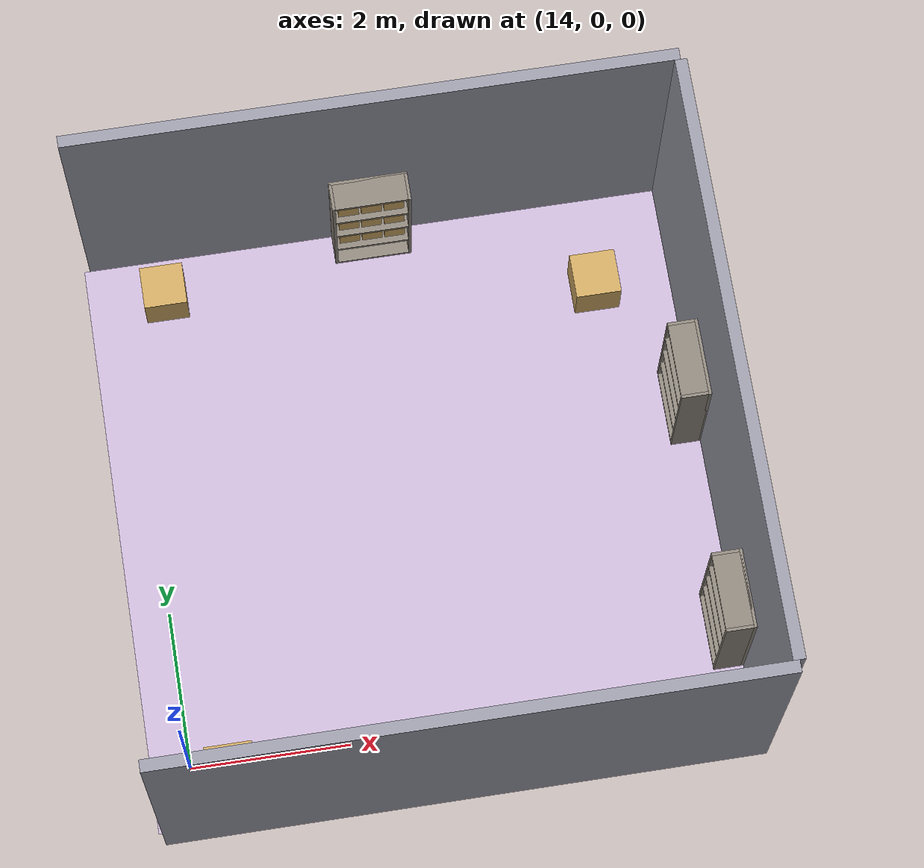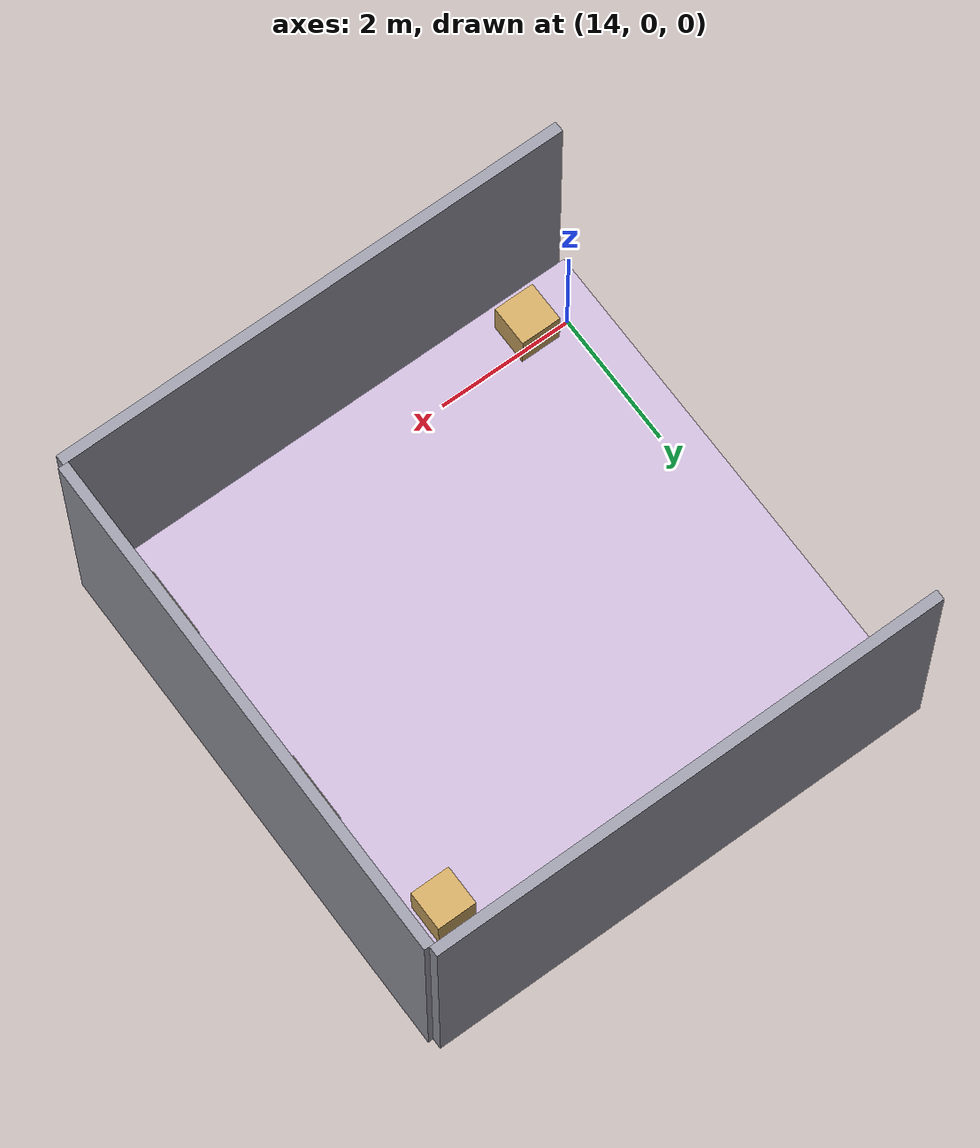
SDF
<?xml version="1.0"?>
<sdf version="1.8">
  <model name="room_f">
    <static>true</static>
    <pose>0 0 0 0 0 0</pose>
    <link name="floor_f">
      <pose>17.25 3.0 0.002 0 0 0</pose>
      <visual name="vis">
        <geometry><box><size>7.5 7.5 0.004</size></box></geometry>
        <material><ambient>0.78 0.71 0.83 1</ambient><diffuse>0.78 0.71 0.83 1</diffuse></material>
      </visual>
    </link>
    <link name="wall_f_s">
      <pose>17.325 -0.825 2.0 0 0 0</pose>
      <collision name="col"><geometry><box><size>7.5 0.15 4.0</size></box></geometry></collision>
      <visual name="vis">
        <geometry><box><size>7.5 0.15 4.0</size></box></geometry>
        <material><ambient>0.6 0.6 0.65 1</ambient><diffuse>0.6 0.6 0.65 1</diffuse></material>
      </visual>
    </link>
    <link name="wall_f_e">
      <pose>21.075 3.0 2.0 0 0 0</pose>
      <collision name="col"><geometry><box><size>0.15 7.5 4.0</size></box></geometry></collision>
      <visual name="vis">
        <geometry><box><size>0.15 7.5 4.0</size></box></geometry>
        <material><ambient>0.6 0.6 0.65 1</ambient><diffuse>0.6 0.6 0.65 1</diffuse></material>
      </visual>
    </link>
    <link name="wall_f_n">
      <pose>17.325 6.825 2.0 0 0 0</pose>
      <collision name="col"><geometry><box><size>7.5 0.15 4.0</size></box></geometry></collision>
      <visual name="vis">
        <geometry><box><size>7.5 0.15 4.0</size></box></geometry>
        <material><ambient>0.6 0.6 0.65 1</ambient><diffuse>0.6 0.6 0.65 1</diffuse></material>
      </visual>
    </link>
    <link name="shelf_f1_back">
      <pose>20.98 0.75 0.9 0 0 0</pose>
      <collision name="col"><geometry><box><size>0.04 1.0 1.8</size></box></geometry></collision>
      <visual name="vis">
        <geometry><box><size>0.04 1.0 1.8</size></box></geometry>
        <material><ambient>0.55 0.52 0.48 1</ambient><diffuse>0.55 0.52 0.48 1</diffuse></material>
      </visual>
    </link>
    <link name="shelf_f1_sl">
      <pose>20.8 0.27 0.9 0 0 0</pose>
      <collision name="col"><geometry><box><size>0.36000000000000004 0.04 1.8</size></box></geometry></collision>
      <visual name="vis">
        <geometry><box><size>0.36000000000000004 0.04 1.8</size></box></geometry>
        <material><ambient>0.55 0.52 0.48 1</ambient><diffuse>0.55 0.52 0.48 1</diffuse></material>
      </visual>
    </link>
    <link name="shelf_f1_sr">
      <pose>20.8 1.23 0.9 0 0 0</pose>
      <collision name="col"><geometry><box><size>0.36000000000000004 0.04 1.8</size></box></geometry></collision>
      <visual name="vis">
        <geometry><box><size>0.36000000000000004 0.04 1.8</size></box></geometry>
        <material><ambient>0.55 0.52 0.48 1</ambient><diffuse>0.55 0.52 0.48 1</diffuse></material>
      </visual>
    </link>
    <link name="shelf_f1_brd0">
      <pose>20.8 0.75 0.02 0 0 0</pose>
      <collision name="col"><geometry><box><size>0.36000000000000004 0.92 0.04</size></box></geometry></collision>
      <visual name="vis">
        <geometry><box><size>0.36000000000000004 0.92 0.04</size></box></geometry>
        <material><ambient>0.55 0.52 0.48 1</ambient><diffuse>0.55 0.52 0.48 1</diffuse></material>
      </visual>
    </link>
    <link name="shelf_f1_brd1">
      <pose>20.8 0.75 0.46 0 0 0</pose>
      <collision name="col"><geometry><box><size>0.36000000000000004 0.92 0.04</size></box></geometry></collision>
      <visual name="vis">
        <geometry><box><size>0.36000000000000004 0.92 0.04</size></box></geometry>
        <material><ambient>0.55 0.52 0.48 1</ambient><diffuse>0.55 0.52 0.48 1</diffuse></material>
      </visual>
    </link>
    <link name="shelf_f1_brd2">
      <pose>20.8 0.75 0.9 0 0 0</pose>
      <collision name="col"><geometry><box><size>0.36000000000000004 0.92 0.04</size></box></geometry></collision>
      <visual name="vis">
        <geometry><box><size>0.36000000000000004 0.92 0.04</size></box></geometry>
        <material><ambient>0.55 0.52 0.48 1</ambient><diffuse>0.55 0.52 0.48 1</diffuse></material>
      </visual>
    </link>
    <link name="shelf_f1_brd3">
      <pose>20.8 0.75 1.34 0 0 0</pose>
      <collision name="col"><geometry><box><size>0.36000000000000004 0.92 0.04</size></box></geometry></collision>
      <visual name="vis">
        <geometry><box><size>0.36000000000000004 0.92 0.04</size></box></geometry>
        <material><ambient>0.55 0.52 0.48 1</ambient><diffuse>0.55 0.52 0.48 1</diffuse></material>
      </visual>
    </link>
    <link name="shelf_f1_brd4">
      <pose>20.8 0.75 1.78 0 0 0</pose>
      <collision name="col"><geometry><box><size>0.36000000000000004 0.92 0.04</size></box></geometry></collision>
      <visual name="vis">
        <geometry><box><size>0.36000000000000004 0.92 0.04</size></box></geometry>
        <material><ambient>0.55 0.52 0.48 1</ambient><diffuse>0.55 0.52 0.48 1</diffuse></material>
      </visual>
    </link>
    <link name="shelf_f1_bx10">
      <pose>20.830000000000002 0.45999999999999996 0.61 0 0 0</pose>
      <collision name="col"><geometry><box><size>0.26 0.26 0.26</size></box></geometry></collision>
      <visual name="vis">
        <geometry><box><size>0.26 0.26 0.26</size></box></geometry>
        <material><ambient>0.8 0.65 0.38 1</ambient><diffuse>0.8 0.65 0.38 1</diffuse></material>
      </visual>
    </link>
    <link name="shelf_f1_bx11">
      <pose>20.830000000000002 0.75 0.61 0 0 0</pose>
      <collision name="col"><geometry><box><size>0.26 0.26 0.26</size></box></geometry></collision>
      <visual name="vis">
        <geometry><box><size>0.26 0.26 0.26</size></box></geometry>
        <material><ambient>0.8 0.65 0.38 1</ambient><diffuse>0.8 0.65 0.38 1</diffuse></material>
      </visual>
    </link>
    <link name="shelf_f1_bx12">
      <pose>20.830000000000002 1.04 0.61 0 0 0</pose>
      <collision name="col"><geometry><box><size>0.26 0.26 0.26</size></box></geometry></collision>
      <visual name="vis">
        <geometry><box><size>0.26 0.26 0.26</size></box></geometry>
        <material><ambient>0.8 0.65 0.38 1</ambient><diffuse>0.8 0.65 0.38 1</diffuse></material>
      </visual>
    </link>
    <link name="shelf_f1_bx20">
      <pose>20.830000000000002 0.45999999999999996 1.05 0 0 0</pose>
      <collision name="col"><geometry><box><size>0.26 0.26 0.26</size></box></geometry></collision>
      <visual name="vis">
        <geometry><box><size>0.26 0.26 0.26</size></box></geometry>
        <material><ambient>0.8 0.65 0.38 1</ambient><diffuse>0.8 0.65 0.38 1</diffuse></material>
      </visual>
    </link>
    <link name="shelf_f1_bx21">
      <pose>20.830000000000002 0.75 1.05 0 0 0</pose>
      <collision name="col"><geometry><box><size>0.26 0.26 0.26</size></box></geometry></collision>
      <visual name="vis">
        <geometry><box><size>0.26 0.26 0.26</size></box></geometry>
        <material><ambient>0.8 0.65 0.38 1</ambient><diffuse>0.8 0.65 0.38 1</diffuse></material>
      </visual>
    </link>
    <link name="shelf_f1_bx22">
      <pose>20.830000000000002 1.04 1.05 0 0 0</pose>
      <collision name="col"><geometry><box><size>0.26 0.26 0.26</size></box></geometry></collision>
      <visual name="vis">
        <geometry><box><size>0.26 0.26 0.26</size></box></geometry>
        <material><ambient>0.8 0.65 0.38 1</ambient><diffuse>0.8 0.65 0.38 1</diffuse></material>
      </visual>
    </link>
    <link name="shelf_f1_bx30">
      <pose>20.830000000000002 0.45999999999999996 1.4900000000000002 0 0 0</pose>
      <collision name="col"><geometry><box><size>0.26 0.26 0.26</size></box></geometry></collision>
      <visual name="vis">
        <geometry><box><size>0.26 0.26 0.26</size></box></geometry>
        <material><ambient>0.8 0.65 0.38 1</ambient><diffuse>0.8 0.65 0.38 1</diffuse></material>
      </visual>
    </link>
    <link name="shelf_f1_bx31">
      <pose>20.830000000000002 0.75 1.4900000000000002 0 0 0</pose>
      <collision name="col"><geometry><box><size>0.26 0.26 0.26</size></box></geometry></collision>
      <visual name="vis">
        <geometry><box><size>0.26 0.26 0.26</size></box></geometry>
        <material><ambient>0.8 0.65 0.38 1</ambient><diffuse>0.8 0.65 0.38 1</diffuse></material>
      </visual>
    </link>
    <link name="shelf_f1_bx32">
      <pose>20.830000000000002 1.04 1.4900000000000002 0 0 0</pose>
      <collision name="col"><geometry><box><size>0.26 0.26 0.26</size></box></geometry></collision>
      <visual name="vis">
        <geometry><box><size>0.26 0.26 0.26</size></box></geometry>
        <material><ambient>0.8 0.65 0.38 1</ambient><diffuse>0.8 0.65 0.38 1</diffuse></material>
      </visual>
    </link>
    <link name="shelf_f2_back">
      <pose>20.98 3.75 0.9 0 0 0</pose>
      <collision name="col"><geometry><box><size>0.04 1.0 1.8</size></box></geometry></collision>
      <visual name="vis">
        <geometry><box><size>0.04 1.0 1.8</size></box></geometry>
        <material><ambient>0.55 0.52 0.48 1</ambient><diffuse>0.55 0.52 0.48 1</diffuse></material>
      </visual>
    </link>
    <link name="shelf_f2_sl">
      <pose>20.8 3.27 0.9 0 0 0</pose>
      <collision name="col"><geometry><box><size>0.36000000000000004 0.04 1.8</size></box></geometry></collision>
      <visual name="vis">
        <geometry><box><size>0.36000000000000004 0.04 1.8</size></box></geometry>
        <material><ambient>0.55 0.52 0.48 1</ambient><diffuse>0.55 0.52 0.48 1</diffuse></material>
      </visual>
    </link>
    <link name="shelf_f2_sr">
      <pose>20.8 4.23 0.9 0 0 0</pose>
      <collision name="col"><geometry><box><size>0.36000000000000004 0.04 1.8</size></box></geometry></collision>
      <visual name="vis">
        <geometry><box><size>0.36000000000000004 0.04 1.8</size></box></geometry>
        <material><ambient>0.55 0.52 0.48 1</ambient><diffuse>0.55 0.52 0.48 1</diffuse></material>
      </visual>
    </link>
    <link name="shelf_f2_brd0">
      <pose>20.8 3.75 0.02 0 0 0</pose>
      <collision name="col"><geometry><box><size>0.36000000000000004 0.92 0.04</size></box></geometry></collision>
      <visual name="vis">
        <geometry><box><size>0.36000000000000004 0.92 0.04</size></box></geometry>
        <material><ambient>0.55 0.52 0.48 1</ambient><diffuse>0.55 0.52 0.48 1</diffuse></material>
      </visual>
    </link>
    <link name="shelf_f2_brd1">
      <pose>20.8 3.75 0.46 0 0 0</pose>
      <collision name="col"><geometry><box><size>0.36000000000000004 0.92 0.04</size></box></geometry></collision>
      <visual name="vis">
        <geometry><box><size>0.36000000000000004 0.92 0.04</size></box></geometry>
        <material><ambient>0.55 0.52 0.48 1</ambient><diffuse>0.55 0.52 0.48 1</diffuse></material>
      </visual>
    </link>
    <link name="shelf_f2_brd2">
      <pose>20.8 3.75 0.9 0 0 0</pose>
      <collision name="col"><geometry><box><size>0.36000000000000004 0.92 0.04</size></box></geometry></collision>
      <visual name="vis">
        <geometry><box><size>0.36000000000000004 0.92 0.04</size></box></geometry>
        <material><ambient>0.55 0.52 0.48 1</ambient><diffuse>0.55 0.52 0.48 1</diffuse></material>
      </visual>
    </link>
    <link name="shelf_f2_brd3">
      <pose>20.8 3.75 1.34 0 0 0</pose>
      <collision name="col"><geometry><box><size>0.36000000000000004 0.92 0.04</size></box></geometry></collision>
      <visual name="vis">
        <geometry><box><size>0.36000000000000004 0.92 0.04</size></box></geometry>
        <material><ambient>0.55 0.52 0.48 1</ambient><diffuse>0.55 0.52 0.48 1</diffuse></material>
      </visual>
    </link>
    <link name="shelf_f2_brd4">
      <pose>20.8 3.75 1.78 0 0 0</pose>
      <collision name="col"><geometry><box><size>0.36000000000000004 0.92 0.04</size></box></geometry></collision>
      <visual name="vis">
        <geometry><box><size>0.36000000000000004 0.92 0.04</size></box></geometry>
        <material><ambient>0.55 0.52 0.48 1</ambient><diffuse>0.55 0.52 0.48 1</diffuse></material>
      </visual>
    </link>
    <link name="shelf_f2_bx10">
      <pose>20.830000000000002 3.46 0.61 0 0 0</pose>
      <collision name="col"><geometry><box><size>0.26 0.26 0.26</size></box></geometry></collision>
      <visual name="vis">
        <geometry><box><size>0.26 0.26 0.26</size></box></geometry>
        <material><ambient>0.8 0.65 0.38 1</ambient><diffuse>0.8 0.65 0.38 1</diffuse></material>
      </visual>
    </link>
    <link name="shelf_f2_bx11">
      <pose>20.830000000000002 3.75 0.61 0 0 0</pose>
      <collision name="col"><geometry><box><size>0.26 0.26 0.26</size></box></geometry></collision>
      <visual name="vis">
        <geometry><box><size>0.26 0.26 0.26</size></box></geometry>
        <material><ambient>0.8 0.65 0.38 1</ambient><diffuse>0.8 0.65 0.38 1</diffuse></material>
      </visual>
    </link>
    <link name="shelf_f2_bx12">
      <pose>20.830000000000002 4.04 0.61 0 0 0</pose>
      <collision name="col"><geometry><box><size>0.26 0.26 0.26</size></box></geometry></collision>
      <visual name="vis">
        <geometry><box><size>0.26 0.26 0.26</size></box></geometry>
        <material><ambient>0.8 0.65 0.38 1</ambient><diffuse>0.8 0.65 0.38 1</diffuse></material>
      </visual>
    </link>
    <link name="shelf_f2_bx20">
      <pose>20.830000000000002 3.46 1.05 0 0 0</pose>
      <collision name="col"><geometry><box><size>0.26 0.26 0.26</size></box></geometry></collision>
      <visual name="vis">
        <geometry><box><size>0.26 0.26 0.26</size></box></geometry>
        <material><ambient>0.8 0.65 0.38 1</ambient><diffuse>0.8 0.65 0.38 1</diffuse></material>
      </visual>
    </link>
    <link name="shelf_f2_bx21">
      <pose>20.830000000000002 3.75 1.05 0 0 0</pose>
      <collision name="col"><geometry><box><size>0.26 0.26 0.26</size></box></geometry></collision>
      <visual name="vis">
        <geometry><box><size>0.26 0.26 0.26</size></box></geometry>
        <material><ambient>0.8 0.65 0.38 1</ambient><diffuse>0.8 0.65 0.38 1</diffuse></material>
      </visual>
    </link>
    <link name="shelf_f2_bx22">
      <pose>20.830000000000002 4.04 1.05 0 0 0</pose>
      <collision name="col"><geometry><box><size>0.26 0.26 0.26</size></box></geometry></collision>
      <visual name="vis">
        <geometry><box><size>0.26 0.26 0.26</size></box></geometry>
        <material><ambient>0.8 0.65 0.38 1</ambient><diffuse>0.8 0.65 0.38 1</diffuse></material>
      </visual>
    </link>
    <link name="shelf_f2_bx30">
      <pose>20.830000000000002 3.46 1.4900000000000002 0 0 0</pose>
      <collision name="col"><geometry><box><size>0.26 0.26 0.26</size></box></geometry></collision>
      <visual name="vis">
        <geometry><box><size>0.26 0.26 0.26</size></box></geometry>
        <material><ambient>0.8 0.65 0.38 1</ambient><diffuse>0.8 0.65 0.38 1</diffuse></material>
      </visual>
    </link>
    <link name="shelf_f2_bx31">
      <pose>20.830000000000002 3.75 1.4900000000000002 0 0 0</pose>
      <collision name="col"><geometry><box><size>0.26 0.26 0.26</size></box></geometry></collision>
      <visual name="vis">
        <geometry><box><size>0.26 0.26 0.26</size></box></geometry>
        <material><ambient>0.8 0.65 0.38 1</ambient><diffuse>0.8 0.65 0.38 1</diffuse></material>
      </visual>
    </link>
    <link name="shelf_f2_bx32">
      <pose>20.830000000000002 4.04 1.4900000000000002 0 0 0</pose>
      <collision name="col"><geometry><box><size>0.26 0.26 0.26</size></box></geometry></collision>
      <visual name="vis">
        <geometry><box><size>0.26 0.26 0.26</size></box></geometry>
        <material><ambient>0.8 0.65 0.38 1</ambient><diffuse>0.8 0.65 0.38 1</diffuse></material>
      </visual>
    </link>
    <link name="shelf_f3_back">
      <pose>17.25 6.73 0.9 0 0 0</pose>
      <collision name="col"><geometry><box><size>1.0 0.04 1.8</size></box></geometry></collision>
      <visual name="vis">
        <geometry><box><size>1.0 0.04 1.8</size></box></geometry>
        <material><ambient>0.55 0.52 0.48 1</ambient><diffuse>0.55 0.52 0.48 1</diffuse></material>
      </visual>
    </link>
    <link name="shelf_f3_sl">
      <pose>16.77 6.55 0.9 0 0 0</pose>
      <collision name="col"><geometry><box><size>0.04 0.36000000000000004 1.8</size></box></geometry></collision>
      <visual name="vis">
        <geometry><box><size>0.04 0.36000000000000004 1.8</size></box></geometry>
        <material><ambient>0.55 0.52 0.48 1</ambient><diffuse>0.55 0.52 0.48 1</diffuse></material>
      </visual>
    </link>
    <link name="shelf_f3_sr">
      <pose>17.73 6.55 0.9 0 0 0</pose>
      <collision name="col"><geometry><box><size>0.04 0.36000000000000004 1.8</size></box></geometry></collision>
      <visual name="vis">
        <geometry><box><size>0.04 0.36000000000000004 1.8</size></box></geometry>
        <material><ambient>0.55 0.52 0.48 1</ambient><diffuse>0.55 0.52 0.48 1</diffuse></material>
      </visual>
    </link>
    <link name="shelf_f3_brd0">
      <pose>17.25 6.55 0.02 0 0 0</pose>
      <collision name="col"><geometry><box><size>0.92 0.36000000000000004 0.04</size></box></geometry></collision>
      <visual name="vis">
        <geometry><box><size>0.92 0.36000000000000004 0.04</size></box></geometry>
        <material><ambient>0.55 0.52 0.48 1</ambient><diffuse>0.55 0.52 0.48 1</diffuse></material>
      </visual>
    </link>
    <link name="shelf_f3_brd1">
      <pose>17.25 6.55 0.46 0 0 0</pose>
      <collision name="col"><geometry><box><size>0.92 0.36000000000000004 0.04</size></box></geometry></collision>
      <visual name="vis">
        <geometry><box><size>0.92 0.36000000000000004 0.04</size></box></geometry>
        <material><ambient>0.55 0.52 0.48 1</ambient><diffuse>0.55 0.52 0.48 1</diffuse></material>
      </visual>
    </link>
    <link name="shelf_f3_brd2">
      <pose>17.25 6.55 0.9 0 0 0</pose>
      <collision name="col"><geometry><box><size>0.92 0.36000000000000004 0.04</size></box></geometry></collision>
      <visual name="vis">
        <geometry><box><size>0.92 0.36000000000000004 0.04</size></box></geometry>
        <material><ambient>0.55 0.52 0.48 1</ambient><diffuse>0.55 0.52 0.48 1</diffuse></material>
      </visual>
    </link>
    <link name="shelf_f3_brd3">
      <pose>17.25 6.55 1.34 0 0 0</pose>
      <collision name="col"><geometry><box><size>0.92 0.36000000000000004 0.04</size></box></geometry></collision>
      <visual name="vis">
        <geometry><box><size>0.92 0.36000000000000004 0.04</size></box></geometry>
        <material><ambient>0.55 0.52 0.48 1</ambient><diffuse>0.55 0.52 0.48 1</diffuse></material>
      </visual>
    </link>
    <link name="shelf_f3_brd4">
      <pose>17.25 6.55 1.78 0 0 0</pose>
      <collision name="col"><geometry><box><size>0.92 0.36000000000000004 0.04</size></box></geometry></collision>
      <visual name="vis">
        <geometry><box><size>0.92 0.36000000000000004 0.04</size></box></geometry>
        <material><ambient>0.55 0.52 0.48 1</ambient><diffuse>0.55 0.52 0.48 1</diffuse></material>
      </visual>
    </link>
    <link name="shelf_f3_bx10">
      <pose>16.96 6.58 0.61 0 0 0</pose>
      <collision name="col"><geometry><box><size>0.26 0.26 0.26</size></box></geometry></collision>
      <visual name="vis">
        <geometry><box><size>0.26 0.26 0.26</size></box></geometry>
        <material><ambient>0.8 0.65 0.38 1</ambient><diffuse>0.8 0.65 0.38 1</diffuse></material>
      </visual>
    </link>
    <link name="shelf_f3_bx11">
      <pose>17.25 6.58 0.61 0 0 0</pose>
      <collision name="col"><geometry><box><size>0.26 0.26 0.26</size></box></geometry></collision>
      <visual name="vis">
        <geometry><box><size>0.26 0.26 0.26</size></box></geometry>
        <material><ambient>0.8 0.65 0.38 1</ambient><diffuse>0.8 0.65 0.38 1</diffuse></material>
      </visual>
    </link>
    <link name="shelf_f3_bx12">
      <pose>17.54 6.58 0.61 0 0 0</pose>
      <collision name="col"><geometry><box><size>0.26 0.26 0.26</size></box></geometry></collision>
      <visual name="vis">
        <geometry><box><size>0.26 0.26 0.26</size></box></geometry>
        <material><ambient>0.8 0.65 0.38 1</ambient><diffuse>0.8 0.65 0.38 1</diffuse></material>
      </visual>
    </link>
    <link name="shelf_f3_bx20">
      <pose>16.96 6.58 1.05 0 0 0</pose>
      <collision name="col"><geometry><box><size>0.26 0.26 0.26</size></box></geometry></collision>
      <visual name="vis">
        <geometry><box><size>0.26 0.26 0.26</size></box></geometry>
        <material><ambient>0.8 0.65 0.38 1</ambient><diffuse>0.8 0.65 0.38 1</diffuse></material>
      </visual>
    </link>
    <link name="shelf_f3_bx21">
      <pose>17.25 6.58 1.05 0 0 0</pose>
      <collision name="col"><geometry><box><size>0.26 0.26 0.26</size></box></geometry></collision>
      <visual name="vis">
        <geometry><box><size>0.26 0.26 0.26</size></box></geometry>
        <material><ambient>0.8 0.65 0.38 1</ambient><diffuse>0.8 0.65 0.38 1</diffuse></material>
      </visual>
    </link>
    <link name="shelf_f3_bx22">
      <pose>17.54 6.58 1.05 0 0 0</pose>
      <collision name="col"><geometry><box><size>0.26 0.26 0.26</size></box></geometry></collision>
      <visual name="vis">
        <geometry><box><size>0.26 0.26 0.26</size></box></geometry>
        <material><ambient>0.8 0.65 0.38 1</ambient><diffuse>0.8 0.65 0.38 1</diffuse></material>
      </visual>
    </link>
    <link name="shelf_f3_bx30">
      <pose>16.96 6.58 1.4900000000000002 0 0 0</pose>
      <collision name="col"><geometry><box><size>0.26 0.26 0.26</size></box></geometry></collision>
      <visual name="vis">
        <geometry><box><size>0.26 0.26 0.26</size></box></geometry>
        <material><ambient>0.8 0.65 0.38 1</ambient><diffuse>0.8 0.65 0.38 1</diffuse></material>
      </visual>
    </link>
    <link name="shelf_f3_bx31">
      <pose>17.25 6.58 1.4900000000000002 0 0 0</pose>
      <collision name="col"><geometry><box><size>0.26 0.26 0.26</size></box></geometry></collision>
      <visual name="vis">
        <geometry><box><size>0.26 0.26 0.26</size></box></geometry>
        <material><ambient>0.8 0.65 0.38 1</ambient><diffuse>0.8 0.65 0.38 1</diffuse></material>
      </visual>
    </link>
    <link name="shelf_f3_bx32">
      <pose>17.54 6.58 1.4900000000000002 0 0 0</pose>
      <collision name="col"><geometry><box><size>0.26 0.26 0.26</size></box></geometry></collision>
      <visual name="vis">
        <geometry><box><size>0.26 0.26 0.26</size></box></geometry>
        <material><ambient>0.8 0.65 0.38 1</ambient><diffuse>0.8 0.65 0.38 1</diffuse></material>
      </visual>
    </link>
    <link name="fbox_f1">
      <pose>14.5 -0.2 0.3 0 0 0</pose>
      <collision name="col"><geometry><box><size>0.6 0.6 0.6</size></box></geometry></collision>
      <visual name="vis">
        <geometry><box><size>0.6 0.6 0.6</size></box></geometry>
        <material><ambient>0.8 0.65 0.38 1</ambient><diffuse>0.8 0.65 0.38 1</diffuse></material>
      </visual>
    </link>
    <link name="fbox_f2">
      <pose>14.5 6.2 0.275 0 0 0</pose>
      <collision name="col"><geometry><box><size>0.55 0.55 0.55</size></box></geometry></collision>
      <visual name="vis">
        <geometry><box><size>0.55 0.55 0.55</size></box></geometry>
        <material><ambient>0.8 0.65 0.38 1</ambient><diffuse>0.8 0.65 0.38 1</diffuse></material>
      </visual>
    </link>
    <link name="fbox_f3">
      <pose>20.0 5.5 0.29 0 0 0</pose>
      <collision name="col"><geometry><box><size>0.58 0.58 0.58</size></box></geometry></collision>
      <visual name="vis">
        <geometry><box><size>0.58 0.58 0.58</size></box></geometry>
        <material><ambient>0.8 0.65 0.38 1</ambient><diffuse>0.8 0.65 0.38 1</diffuse></material>
      </visual>
    </link>
  </model>
</sdf>
